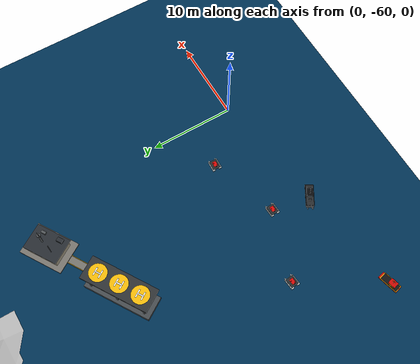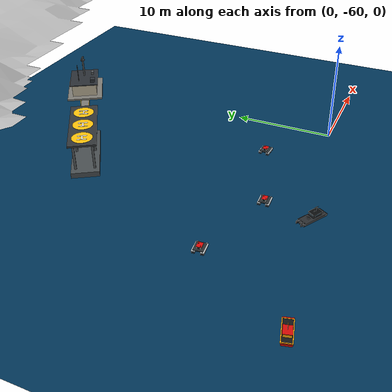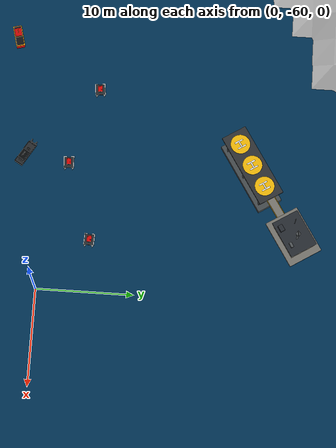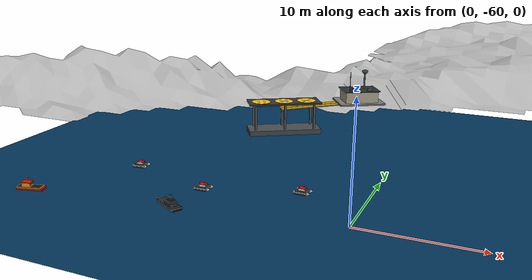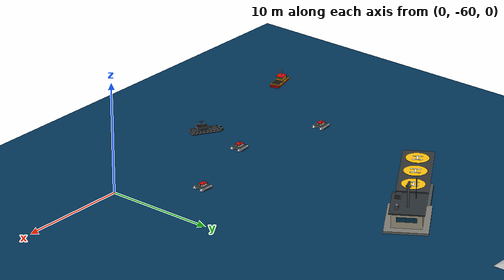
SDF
<sdf version="1.10">
 <world name="heterogeneous_332">
  <plugin filename="gz-sim-physics-system" name="gz::sim::systems::Physics"/>
  <plugin filename="gz-sim-user-commands-system" name="gz::sim::systems::UserCommands"/>
  <plugin filename="gz-sim-scene-broadcaster-system" name="gz::sim::systems::SceneBroadcaster"/>
  <plugin filename="gz-sim-contact-system" name="gz::sim::systems::Contact"/>
  <plugin filename="gz-sim-sensors-system" name="gz::sim::systems::Sensors">
   <render_engine>ogre2</render_engine>
  </plugin>
  <plugin filename="gz-sim-imu-system" name="gz::sim::systems::Imu"/>
  <plugin filename="gz-sim-air-pressure-system" name="gz::sim::systems::AirPressure"/>
  <plugin filename="gz-sim-magnetometer-system" name="gz::sim::systems::Magnetometer"/>
  <plugin filename="gz-sim-navsat-system" name="gz::sim::systems::NavSat"/>
  <physics type="ode">
   <max_step_size>0.004</max_step_size>
   <real_time_factor>1</real_time_factor>
   <real_time_update_rate>250</real_time_update_rate>
  </physics>
  <gravity>0 0 -9.8</gravity>
  <scene>
   <grid>false</grid>
   <ambient>0.75 0.78 0.82 1</ambient>
   <background>0.82 0.9 0.96 1</background>
   <shadows>true</shadows>
  </scene>
  <spherical_coordinates>
   <surface_model>EARTH_WGS84</surface_model>
   <world_frame_orientation>ENU</world_frame_orientation>
   <latitude_deg>47.397971057728974</latitude_deg>
   <longitude_deg>8.5461637398001464</longitude_deg>
   <elevation>0</elevation>
   <heading_deg>0</heading_deg>
  </spherical_coordinates>
  <model name="ocean_plane">
   <static>true</static>
   <link name="ocean_link">
    <visual name="ocean_visual">
     <pose>0 0 -0.02 0 0 0</pose>
     <geometry><plane><normal>0 0 1</normal><size>2800 2600</size></plane></geometry>
     <material>
      <ambient>0 0.08 0.16 0.48</ambient>
      <diffuse>0 0.2 0.34 0.48</diffuse>
      <specular>0.05 0.08 0.1 1</specular>
     </material>
    </visual>
    <collision name="ocean_collision">
     <geometry><plane><normal>0 0 1</normal><size>2800 2600</size></plane></geometry>
    </collision>
   </link>
  </model>
  <include>
   <uri>model://catalina_island</uri>
   <name>catalina_island_terrain</name>
   <pose>0 0 -0.144 0 0 0</pose>
  </include>
  <include><uri>model://shore_collision_boundary</uri><name>shore_collision_boundary</name></include>
  <include>
   <uri>model://sim332_island_uav_base</uri>
   <name>island_uav_base</name>
   <pose>-13.5 -38.7 0 0 0 0.559</pose>
  </include>
  <include>
   <uri>model://mountain_shore_command_base</uri>
   <name>shore_command_base</name>
   <pose>-6.3 -34.2 3.15 0 0 0.559</pose>
  </include>
  <include><uri>model://sim332_usv_blue</uri><name>usv_01</name><pose>-21.6 -54.9 0 0 0 0.10</pose></include>
  <include><uri>model://sim332_usv_green</uri><name>usv_02</name><pose>-13.5 -57.6 0 0 0 0.05</pose></include>
  <include><uri>model://sim332_usv_cyan</uri><name>usv_03</name><pose>-5.4 -54.9 0 0 0 -0.05</pose></include>
  <include>
   <uri>model://sim332_friendly_ship</uri>
   <name>friendly_ship</name>
   <pose>-27 -63.9 0 0 0 0.25</pose>
  </include>
  <include>
   <uri>model://sim332_enemy_ship</uri>
   <name>enemy_ship</name>
   <pose>-14.4 -62.1 0 0 0 2.60</pose>
  </include>
  <light name="sun" type="directional">
   <pose>0 0 100 0 0 0</pose>
   <intensity>1.1</intensity>
   <direction>-0.35 0.2 -0.92</direction>
   <diffuse>0.92 0.92 0.88 1</diffuse>
   <specular>0.25 0.25 0.25 1</specular>
  </light>
 </world>
</sdf>

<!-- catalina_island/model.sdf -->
<sdf version="1.9">
  <!-- Unity presentation geometry scale=0.18 -->
  <model name="catalina_island">
    <static>true</static>
    <link name="terrain_link">
      <!-- Catalina 岛屿卫星地形 -->
      <visual name="terrain_visual">
        <cast_shadows>true</cast_shadows>
        <geometry>
          <mesh>
            <uri>meshes/scene.gltf</uri>
            <!--
              原模型约 41.6km × 35.5km。
              Unity 与 Gazebo 共用 0.024 原始 mesh 缩放。
            -->
            <scale>0.00432 0.00432 0.00432</scale>
          </mesh>
        </geometry>
      </visual>
      <collision name="terrain_collision">
        <geometry>
          <mesh>
            <uri>meshes/terrain_collision.obj</uri>
            <scale>0.00432 0.00432 0.00432</scale>
          </mesh>
        </geometry>
      </collision>
    </link>
  </model>
</sdf>

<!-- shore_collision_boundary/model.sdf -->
<sdf version="1.9">
  <model name="Shore_Collision_Boundary">
    <static>true</static>
    <link name="boundary_link">
      <!-- 四段外海边界只限制驶出地图，不覆盖可航行海面。 -->
      <collision name="North_Shore_Collision">
        <pose>0 448 3 0 0 0</pose>
        <geometry><box><size>1050 8 8</size></box></geometry>
      </collision>
      <collision name="South_Shore_Collision">
        <pose>0 -448 3 0 0 0</pose>
        <geometry><box><size>1050 8 8</size></box></geometry>
      </collision>
      <collision name="East_Shore_Collision">
        <pose>523 0 3 0 0 0</pose>
        <geometry><box><size>8 900 8</size></box></geometry>
      </collision>
      <collision name="West_Shore_Collision">
        <pose>-523 0 3 0 0 0</pose>
        <geometry><box><size>8 900 8</size></box></geometry>
      </collision>
    </link>
  </model>
</sdf>

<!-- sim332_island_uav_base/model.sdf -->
<sdf version="1.10">
  <!-- Unity presentation geometry scale=0.18 -->
  <!-- Numeric visual source: SimulationBootstrap.BuildIslandUavBase. -->
  <model name="sim332_island_uav_base">
    <static>true</static>
    <link name="base_link">
      <collision name="foundation_collision">
        <pose>0 0 0.27 0 0 0</pose>
        <geometry>
          <box>
            <size>7.92 2.7 0.54</size>
          </box>
        </geometry>
      </collision>
      <visual name="foundation">
        <pose>0 0 0.27 0 0 0</pose>
        <geometry>
          <box>
            <size>7.92 2.7 0.54</size>
          </box>
        </geometry>
        <material>
          <ambient>.126 .135 .1395 1</ambient>
          <diffuse>.28 .30 .31 1</diffuse>
        </material>
      </visual>
      <collision name="deck_collision">
        <pose>0 0 3.42 0 0 0</pose>
        <geometry>
          <box>
            <size>7.92 2.7 0.18</size>
          </box>
        </geometry>
      </collision>
      <visual name="flight_deck">
        <pose>0 0 3.42 0 0 0</pose>
        <geometry>
          <box>
            <size>7.92 2.7 0.18</size>
          </box>
        </geometry>
        <material>
          <ambient>.0855 .09 .0945 1</ambient>
          <diffuse>.19 .20 .21 1</diffuse>
        </material>
      </visual>
      <collision name="column_01_collision">
        <pose>-3.24 -0.9 1.908 0 0 0</pose>
        <geometry>
          <box>
            <size>0.216 0.216 3.024</size>
          </box>
        </geometry>
      </collision>
      <collision name="column_02_collision">
        <pose>-3.24 0.9 1.908 0 0 0</pose>
        <geometry>
          <box>
            <size>0.216 0.216 3.024</size>
          </box>
        </geometry>
      </collision>
      <collision name="column_03_collision">
        <pose>0 -0.9 1.908 0 0 0</pose>
        <geometry>
          <box>
            <size>0.216 0.216 3.024</size>
          </box>
        </geometry>
      </collision>
      <collision name="column_04_collision">
        <pose>0 0.9 1.908 0 0 0</pose>
        <geometry>
          <box>
            <size>0.216 0.216 3.024</size>
          </box>
        </geometry>
      </collision>
      <collision name="column_05_collision">
        <pose>3.24 -0.9 1.908 0 0 0</pose>
        <geometry>
          <box>
            <size>0.216 0.216 3.024</size>
          </box>
        </geometry>
      </collision>
      <collision name="column_06_collision">
        <pose>3.24 0.9 1.908 0 0 0</pose>
        <geometry>
          <box>
            <size>0.216 0.216 3.024</size>
          </box>
        </geometry>
      </collision>
      <visual name="column_01">
        <pose>-3.24 -0.9 1.908 0 0 0</pose>
        <geometry>
          <box>
            <size>0.216 0.216 3.024</size>
          </box>
        </geometry>
        <material>
          <ambient>.144 .153 .1575 1</ambient>
          <diffuse>.32 .34 .35 1</diffuse>
        </material>
      </visual>
      <visual name="column_02">
        <pose>-3.24 0.9 1.908 0 0 0</pose>
        <geometry>
          <box>
            <size>0.216 0.216 3.024</size>
          </box>
        </geometry>
        <material>
          <ambient>.144 .153 .1575 1</ambient>
          <diffuse>.32 .34 .35 1</diffuse>
        </material>
      </visual>
      <visual name="column_03">
        <pose>0 -0.9 1.908 0 0 0</pose>
        <geometry>
          <box>
            <size>0.216 0.216 3.024</size>
          </box>
        </geometry>
        <material>
          <ambient>.144 .153 .1575 1</ambient>
          <diffuse>.32 .34 .35 1</diffuse>
        </material>
      </visual>
      <visual name="column_04">
        <pose>0 0.9 1.908 0 0 0</pose>
        <geometry>
          <box>
            <size>0.216 0.216 3.024</size>
          </box>
        </geometry>
        <material>
          <ambient>.144 .153 .1575 1</ambient>
          <diffuse>.32 .34 .35 1</diffuse>
        </material>
      </visual>
      <visual name="column_05">
        <pose>3.24 -0.9 1.908 0 0 0</pose>
        <geometry>
          <box>
            <size>0.216 0.216 3.024</size>
          </box>
        </geometry>
        <material>
          <ambient>.144 .153 .1575 1</ambient>
          <diffuse>.32 .34 .35 1</diffuse>
        </material>
      </visual>
      <visual name="column_06">
        <pose>3.24 0.9 1.908 0 0 0</pose>
        <geometry>
          <box>
            <size>0.216 0.216 3.024</size>
          </box>
        </geometry>
        <material>
          <ambient>.144 .153 .1575 1</ambient>
          <diffuse>.32 .34 .35 1</diffuse>
        </material>
      </visual>
      <collision name="pad_01_collision">
        <pose>-2.52 0 3.5172 0 0 0</pose>
        <geometry>
          <cylinder>
            <radius>0.99</radius>
            <length>0.0144</length>
          </cylinder>
        </geometry>
      </collision>
      <collision name="pad_02_collision">
        <pose>0 0 3.5172 0 0 0</pose>
        <geometry>
          <cylinder>
            <radius>0.99</radius>
            <length>0.0144</length>
          </cylinder>
        </geometry>
      </collision>
      <collision name="pad_03_collision">
        <pose>2.52 0 3.5172 0 0 0</pose>
        <geometry>
          <cylinder>
            <radius>0.99</radius>
            <length>0.0144</length>
          </cylinder>
        </geometry>
      </collision>
      <visual name="pad_01">
        <pose>-2.52 0 3.5172 0 0 0</pose>
        <geometry>
          <cylinder>
            <radius>0.99</radius>
            <length>0.0144</length>
          </cylinder>
        </geometry>
        <material>
          <ambient>.153 .1575 .1575 1</ambient>
          <diffuse>.34 .35 .35 1</diffuse>
        </material>
      </visual>
      <visual name="pad_02">
        <pose>0 0 3.5172 0 0 0</pose>
        <geometry>
          <cylinder>
            <radius>0.99</radius>
            <length>0.0144</length>
          </cylinder>
        </geometry>
        <material>
          <ambient>.153 .1575 .1575 1</ambient>
          <diffuse>.34 .35 .35 1</diffuse>
        </material>
      </visual>
      <visual name="pad_03">
        <pose>2.52 0 3.5172 0 0 0</pose>
        <geometry>
          <cylinder>
            <radius>0.99</radius>
            <length>0.0144</length>
          </cylinder>
        </geometry>
        <material>
          <ambient>.153 .1575 .1575 1</ambient>
          <diffuse>.34 .35 .35 1</diffuse>
        </material>
      </visual>
      <visual name="yellow_edge_01">
        <pose>-2.52 0 3.5262 0 0 0</pose>
        <geometry>
          <cylinder>
            <radius>1.008</radius>
            <length>0.0063</length>
          </cylinder>
        </geometry>
        <material>
          <ambient>.441 .3375 .018 1</ambient>
          <diffuse>.98 .75 .04 1</diffuse>
        </material>
      </visual>
      <visual name="yellow_edge_02">
        <pose>0 0 3.5262 0 0 0</pose>
        <geometry>
          <cylinder>
            <radius>1.008</radius>
            <length>0.0063</length>
          </cylinder>
        </geometry>
        <material>
          <ambient>.441 .3375 .018 1</ambient>
          <diffuse>.98 .75 .04 1</diffuse>
        </material>
      </visual>
      <visual name="yellow_edge_03">
        <pose>2.52 0 3.5262 0 0 0</pose>
        <geometry>
          <cylinder>
            <radius>1.008</radius>
            <length>0.0063</length>
          </cylinder>
        </geometry>
        <material>
          <ambient>.441 .3375 .018 1</ambient>
          <diffuse>.98 .75 .04 1</diffuse>
        </material>
      </visual>
      <visual name="h01_left">
        <pose>-2.844 0 3.528 0 0 0</pose>
        <geometry>
          <box>
            <size>0.144 0.9 0.0144</size>
          </box>
        </geometry>
        <material>
          <ambient>1 1 1 1</ambient>
          <diffuse>1 1 1 1</diffuse>
        </material>
      </visual>
      <visual name="h01_right">
        <pose>-2.196 0 3.528 0 0 0</pose>
        <geometry>
          <box>
            <size>0.144 0.9 0.0144</size>
          </box>
        </geometry>
        <material>
          <ambient>1 1 1 1</ambient>
          <diffuse>1 1 1 1</diffuse>
        </material>
      </visual>
      <visual name="h01_cross">
        <pose>-2.52 0 3.5298 0 0 0</pose>
        <geometry>
          <box>
            <size>0.648 0.144 0.0144</size>
          </box>
        </geometry>
        <material>
          <ambient>1 1 1 1</ambient>
          <diffuse>1 1 1 1</diffuse>
        </material>
      </visual>
      <visual name="h02_left">
        <pose>-0.324 0 3.528 0 0 0</pose>
        <geometry>
          <box>
            <size>0.144 0.9 0.0144</size>
          </box>
        </geometry>
        <material>
          <ambient>1 1 1 1</ambient>
          <diffuse>1 1 1 1</diffuse>
        </material>
      </visual>
      <visual name="h02_right">
        <pose>0.324 0 3.528 0 0 0</pose>
        <geometry>
          <box>
            <size>0.144 0.9 0.0144</size>
          </box>
        </geometry>
        <material>
          <ambient>1 1 1 1</ambient>
          <diffuse>1 1 1 1</diffuse>
        </material>
      </visual>
      <visual name="h02_cross">
        <pose>0 0 3.5298 0 0 0</pose>
        <geometry>
          <box>
            <size>0.648 0.144 0.0144</size>
          </box>
        </geometry>
        <material>
          <ambient>1 1 1 1</ambient>
          <diffuse>1 1 1 1</diffuse>
        </material>
      </visual>
      <visual name="h03_left">
        <pose>2.196 0 3.528 0 0 0</pose>
        <geometry>
          <box>
            <size>0.144 0.9 0.0144</size>
          </box>
        </geometry>
        <material>
          <ambient>1 1 1 1</ambient>
          <diffuse>1 1 1 1</diffuse>
        </material>
      </visual>
      <visual name="h03_right">
        <pose>2.844 0 3.528 0 0 0</pose>
        <geometry>
          <box>
            <size>0.144 0.9 0.0144</size>
          </box>
        </geometry>
        <material>
          <ambient>1 1 1 1</ambient>
          <diffuse>1 1 1 1</diffuse>
        </material>
      </visual>
      <visual name="h03_cross">
        <pose>2.52 0 3.5298 0 0 0</pose>
        <geometry>
          <box>
            <size>0.648 0.144 0.0144</size>
          </box>
        </geometry>
        <material>
          <ambient>1 1 1 1</ambient>
          <diffuse>1 1 1 1</diffuse>
        </material>
      </visual>
    </link>
  </model>
</sdf>

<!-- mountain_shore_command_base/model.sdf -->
<sdf version="1.10">
  <!-- Unity presentation geometry scale=0.18 -->
  <!-- Numeric visual source: SimulationBootstrap.BuildShoreCommandBase. -->
  <model name="mountain_shore_command_base">
    <static>true</static>
    <link name="base_link">
      <collision name="foundation_collision">
        <pose>0 0 0.09 0 0 0</pose>
        <geometry>
          <box>
            <size>5.04 3.6 0.18</size>
          </box>
        </geometry>
      </collision>
      <visual name="foundation">
        <pose>0 0 0.09 0 0 0</pose>
        <geometry>
          <box>
            <size>5.04 3.6 0.18</size>
          </box>
        </geometry>
        <material>
          <ambient>.216 .2115 .198 1</ambient>
          <diffuse>.48 .47 .44 1</diffuse>
        </material>
      </visual>
      <collision name="building_collision">
        <pose>0 0 0.756 0 0 0</pose>
        <geometry>
          <box>
            <size>3.6 2.52 1.296</size>
          </box>
        </geometry>
      </collision>
      <visual name="building">
        <pose>0 0 0.756 0 0 0</pose>
        <geometry>
          <box>
            <size>3.6 2.52 1.296</size>
          </box>
        </geometry>
        <material>
          <ambient>.333 .315 .27 1</ambient>
          <diffuse>.74 .70 .60 1</diffuse>
        </material>
      </visual>
      <collision name="roof_collision">
        <pose>0 0 1.44 0 0 0</pose>
        <geometry>
          <box>
            <size>3.96 2.88 0.09</size>
          </box>
        </geometry>
      </collision>
      <visual name="roof">
        <pose>0 0 1.44 0 0 0</pose>
        <geometry>
          <box>
            <size>3.96 2.88 0.09</size>
          </box>
        </geometry>
        <material>
          <ambient>.072 .081 .09 1</ambient>
          <diffuse>.16 .18 .20 1</diffuse>
        </material>
      </visual>
      <visual name="front_windows">
        <pose>1.8072 0 0.918 0 0 0</pose>
        <geometry>
          <box>
            <size>0.0144 1.62 0.396</size>
          </box>
        </geometry>
        <material>
          <ambient>.01575 .1035 .153 1</ambient>
          <diffuse>.035 .23 .34 1</diffuse>
        </material>
      </visual>
      <collision name="bridge_collision">
        <pose>-4.32 0 -0.27 0 -.06 0</pose>
        <geometry>
          <box>
            <size>9 0.9 0.09</size>
          </box>
        </geometry>
      </collision>
      <visual name="bridge_to_pad">
        <pose>-4.32 0 -0.27 0 -.06 0</pose>
        <geometry>
          <box>
            <size>9 0.9 0.09</size>
          </box>
        </geometry>
        <material>
          <ambient>.216 .2115 .198 1</ambient>
          <diffuse>.48 .47 .44 1</diffuse>
        </material>
      </visual>
      <visual name="bridge_rail_left">
        <pose>-4.32 0.423 -0.117 0 -.06 0</pose>
        <geometry>
          <box>
            <size>9 0.0216 0.216</size>
          </box>
        </geometry>
        <material>
          <ambient>.441 .3375 .018 1</ambient>
          <diffuse>.98 .75 .04 1</diffuse>
        </material>
      </visual>
      <visual name="bridge_rail_right">
        <pose>-4.32 -0.423 -0.117 0 -.06 0</pose>
        <geometry>
          <box>
            <size>9 0.0216 0.216</size>
          </box>
        </geometry>
        <material>
          <ambient>.441 .3375 .018 1</ambient>
          <diffuse>.98 .75 .04 1</diffuse>
        </material>
      </visual>
      <collision name="radar_tower_collision">
        <pose>0.54 0 2.34 0 0 0</pose>
        <geometry>
          <cylinder>
            <radius>0.09</radius>
            <length>1.8</length>
          </cylinder>
        </geometry>
      </collision>
      <visual name="radar_tower">
        <pose>0.54 0 2.34 0 0 0</pose>
        <geometry>
          <cylinder>
            <radius>0.09</radius>
            <length>1.8</length>
          </cylinder>
        </geometry>
        <material>
          <ambient>.144 .153 .1575 1</ambient>
          <diffuse>.32 .34 .35 1</diffuse>
        </material>
      </visual>
      <visual name="radar_pedestal">
        <pose>0.54 0 3.276 0 0 0</pose>
        <geometry>
          <cylinder>
            <radius>0.216</radius>
            <length>0.09</length>
          </cylinder>
        </geometry>
        <material>
          <ambient>.144 .153 .1575 1</ambient>
          <diffuse>.32 .34 .35 1</diffuse>
        </material>
      </visual>
      <visual name="radar_dish">
        <pose>0.54 0 3.456 0 0 -.3839724354</pose>
        <geometry>
          <ellipsoid>
            <radii>0.342 0.0405 0.207</radii>
          </ellipsoid>
        </geometry>
        <material>
          <ambient>.144 .153 .1575 1</ambient>
          <diffuse>.32 .34 .35 1</diffuse>
        </material>
      </visual>
      <visual name="antenna_mast">
        <pose>-0.9 0.54 2.43 0 0 0</pose>
        <geometry>
          <cylinder>
            <radius>0.0324</radius>
            <length>1.8</length>
          </cylinder>
        </geometry>
        <material>
          <ambient>.144 .153 .1575 1</ambient>
          <diffuse>.32 .34 .35 1</diffuse>
        </material>
      </visual>
      <visual name="generator">
        <pose>-1.08 -0.9 1.638 0 0 0</pose>
        <geometry>
          <box>
            <size>0.684 0.468 0.324</size>
          </box>
        </geometry>
        <material>
          <ambient>.072 .081 .09 1</ambient>
          <diffuse>.16 .18 .20 1</diffuse>
        </material>
      </visual>
      <visual name="equipment_console">
        <pose>0.9 -0.864 1.62 0 0 0</pose>
        <geometry>
          <box>
            <size>0.54 0.27 0.288</size>
          </box>
        </geometry>
        <material>
          <ambient>.144 .153 .1575 1</ambient>
          <diffuse>.32 .34 .35 1</diffuse>
        </material>
      </visual>
    </link>
  </model>
</sdf>

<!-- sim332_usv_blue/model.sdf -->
<sdf version="1.10">
  <model name="sim332_usv_blue">
    <include merge="true"><uri>model://unity_usv_m1500</uri></include>
    <plugin filename="libBoatWaveFollower.so" name="gz::sim::systems::BoatWaveFollower">
      <mean_z>0.0</mean_z><heave_amplitude>0.02</heave_amplitude>
      <roll_amplitude>0.025</roll_amplitude><pitch_amplitude>0.018</pitch_amplitude>
      <primary_frequency>1.1</primary_frequency><secondary_frequency>1.7</secondary_frequency>
      <wave_number_x>0.35</wave_number_x><wave_number_y>0.22</wave_number_y>
      <velocity_topic>/model/own_01/cmd_vel</velocity_topic>
    </plugin>
  </model>
</sdf>

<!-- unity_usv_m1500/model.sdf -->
<sdf version="1.10">
  <!-- Product vehicle visuals restored to physical 1:1 scale -->
  <model name="unity_usv_m1500">
    <static>false</static>
    <link name="hull">
      <gravity>false</gravity>
      <enable_wind>true</enable_wind>
      <inertial>
        <mass>35.0</mass>
        <inertia>
          <ixx>4.58</ixx>
          <iyy>7.61</iyy>
          <izz>10.09</izz>
          <ixy>0</ixy>
          <ixz>0</ixz>
          <iyz>0</iyz>
        </inertia>
      </inertial>
      <collision name="vehicle_envelope">
        <pose>0 0 0.27 0 0 0</pose>
        <geometry>
          <box>
            <size>1.50 1.10 0.54</size>
          </box>
        </geometry>
      </collision>
      <visual name="port_pontoon_lower">
        <pose>-0.1699999999 0.3900000001 0.01999999998 0 0 0</pose>
        <geometry>
          <box>
            <size>1.16 0.3000000001 0.2</size>
          </box>
        </geometry>
        <material>
          <ambient>0.025 0.035 0.045 1</ambient>
          <diffuse>0.055 0.075 0.09 1</diffuse>
        </material>
      </visual>
      <visual name="starboard_pontoon_lower">
        <pose>-0.1699999999 -0.3900000001 0.01999999998 0 0 0</pose>
        <geometry>
          <box>
            <size>1.16 0.3000000001 0.2</size>
          </box>
        </geometry>
        <material>
          <ambient>0.025 0.035 0.045 1</ambient>
          <diffuse>0.055 0.075 0.09 1</diffuse>
        </material>
      </visual>
      <visual name="port_pontoon_bow">
        <pose>0.58 0.3900000001 0.07000000002 0 1.5707963268 0</pose>
        <geometry>
          <cone>
            <radius>0.1499999999</radius>
            <length>0.34</length>
          </cone>
        </geometry>
        <material>
          <ambient>0.42 0.44 0.45 1</ambient>
          <diffuse>0.84 0.87 0.88 1</diffuse>
        </material>
      </visual>
      <visual name="starboard_pontoon_bow">
        <pose>0.58 -0.3900000001 0.07000000002 0 1.5707963268 0</pose>
        <geometry>
          <cone>
            <radius>0.1499999999</radius>
            <length>0.34</length>
          </cone>
        </geometry>
        <material>
          <ambient>0.42 0.44 0.45 1</ambient>
          <diffuse>0.84 0.87 0.88 1</diffuse>
        </material>
      </visual>
      <visual name="port_pontoon_cap">
        <pose>-0.1200000001 0.3900000001 0.11 0 0 0</pose>
        <geometry>
          <box>
            <size>1.25 0.32 0.07999999992</size>
          </box>
        </geometry>
        <material>
          <ambient>0.42 0.44 0.45 1</ambient>
          <diffuse>0.84 0.87 0.88 1</diffuse>
        </material>
      </visual>
      <visual name="starboard_pontoon_cap">
        <pose>-0.1200000001 -0.3900000001 0.11 0 0 0</pose>
        <geometry>
          <box>
            <size>1.25 0.32 0.07999999992</size>
          </box>
        </geometry>
        <material>
          <ambient>0.42 0.44 0.45 1</ambient>
          <diffuse>0.84 0.87 0.88 1</diffuse>
        </material>
      </visual>
      <visual name="cross_deck">
        <pose>-0.07999999992 0 0.1650000001 0 0 0</pose>
        <geometry>
          <box>
            <size>1.12 0.92 0.07000000002</size>
          </box>
        </geometry>
        <material>
          <ambient>0.08 0.09 0.095 1</ambient>
          <diffuse>0.16 0.18 0.19 1</diffuse>
        </material>
      </visual>
      <visual name="equipment_bay">
        <pose>-0.1200000001 0 0.29 0 0 0</pose>
        <geometry>
          <box>
            <size>0.58 0.43 0.2</size>
          </box>
        </geometry>
        <material>
          <ambient>0.45 0.455 0.44 1</ambient>
          <diffuse>0.90 0.91 0.88 1</diffuse>
        </material>
      </visual>
      <visual name="equipment_lid">
        <pose>-0.1200000001 0 0.405 0 0 0</pose>
        <geometry>
          <box>
            <size>0.6199999999 0.47 0.03499999992</size>
          </box>
        </geometry>
        <material>
          <ambient>0.43 0.018 0.012 1</ambient>
          <diffuse>0.86 0.035 0.025 1</diffuse>
        </material>
      </visual>
      <visual name="d435_camera">
        <pose>0.1900000001 0 0.32 0 0 0</pose>
        <geometry>
          <box>
            <size>0.045 0.1499999999 0.05000000004</size>
          </box>
        </geometry>
        <material>
          <ambient>0.012 0.12 0.18 1</ambient>
          <diffuse>0.025 0.25 0.38 1</diffuse>
        </material>
      </visual>
      <visual name="jetson_enclosure">
        <pose>-0.38 0 0.31 0 0 0</pose>
        <geometry>
          <box>
            <size>0.16 0.22 0.1000000001</size>
          </box>
        </geometry>
        <material>
          <ambient>0.08 0.09 0.095 1</ambient>
          <diffuse>0.16 0.18 0.19 1</diffuse>
        </material>
      </visual>
      <visual name="rtk_antenna">
        <pose>-0.34 -0.13 0.4600000001 0 0 0</pose>
        <geometry>
          <cylinder>
            <radius>0.02750000004</radius>
            <length>0.07999999992</length>
          </cylinder>
        </geometry>
        <material>
          <ambient>0.08 0.09 0.095 1</ambient>
          <diffuse>0.16 0.18 0.19 1</diffuse>
        </material>
      </visual>
      <visual name="mid360">
        <pose>-0.03000000006 0.13 0.4800000001 0 0 0</pose>
        <geometry>
          <cylinder>
            <radius>0.03749999994</radius>
            <length>0.07999999992</length>
          </cylinder>
        </geometry>
        <material>
          <ambient>0.43 0.018 0.012 1</ambient>
          <diffuse>0.86 0.035 0.025 1</diffuse>
        </material>
      </visual>
      <sensor name="front_camera" type="camera">
        <pose>0.48 0 0.52 0 0 0</pose>
        <update_rate>20</update_rate>
        <camera>
          <horizontal_fov>1.047</horizontal_fov>
          <image>
            <width>320</width>
            <height>180</height>
            <format>R8G8B8</format>
          </image>
          <clip>
            <near>0.05</near>
            <far>200</far>
          </clip>
        </camera>
        <always_on>true</always_on>
        <visualize>false</visualize>
      </sensor>
      <sensor name="front_lidar" type="gpu_lidar">
        <pose>-0.03 0.13 0.48 0 0 0</pose>
        <update_rate>10</update_rate>
        <ray>
          <scan>
            <horizontal>
              <samples>361</samples>
              <resolution>1</resolution>
              <min_angle>-1.5708</min_angle>
              <max_angle>1.5708</max_angle>
            </horizontal>
          </scan>
          <range>
            <min>0.10</min>
            <max>80</max>
            <resolution>0.02</resolution>
          </range>
          <noise>
            <type>gaussian</type>
            <mean>0</mean>
            <stddev>0.01</stddev>
          </noise>
          <visibility_mask>0x01</visibility_mask>
        </ray>
        <always_on>true</always_on>
        <visualize>false</visualize>
      </sensor>
    </link>
  </model>
</sdf>

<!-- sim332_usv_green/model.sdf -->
<sdf version="1.10">
  <model name="sim332_usv_green">
    <include merge="true"><uri>model://unity_usv_m1500</uri></include>
    <plugin filename="libBoatWaveFollower.so" name="gz::sim::systems::BoatWaveFollower">
      <mean_z>0.0</mean_z><heave_amplitude>0.02</heave_amplitude>
      <roll_amplitude>0.025</roll_amplitude><pitch_amplitude>0.018</pitch_amplitude>
      <primary_frequency>1.1</primary_frequency><secondary_frequency>1.7</secondary_frequency>
      <wave_number_x>0.35</wave_number_x><wave_number_y>0.22</wave_number_y>
      <velocity_topic>/model/own_02/cmd_vel</velocity_topic>
    </plugin>
  </model>
</sdf>

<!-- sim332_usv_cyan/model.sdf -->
<sdf version="1.10">
  <model name="sim332_usv_cyan">
    <include merge="true"><uri>model://unity_usv_m1500</uri></include>
    <plugin filename="libBoatWaveFollower.so" name="gz::sim::systems::BoatWaveFollower">
      <mean_z>0.0</mean_z><heave_amplitude>0.02</heave_amplitude>
      <roll_amplitude>0.025</roll_amplitude><pitch_amplitude>0.018</pitch_amplitude>
      <primary_frequency>1.1</primary_frequency><secondary_frequency>1.7</secondary_frequency>
      <wave_number_x>0.35</wave_number_x><wave_number_y>0.22</wave_number_y>
      <velocity_topic>/model/own_03/cmd_vel</velocity_topic>
    </plugin>
  </model>
</sdf>

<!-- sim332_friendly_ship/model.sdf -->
<sdf version="1.10">
  <!-- Unity presentation geometry scale=0.18 -->
  <model name="sim332_friendly_ship">
    <pose>0 0 0.09 0 0 0</pose>
    <link name="hull">
      <gravity>false</gravity>
      <inertial>
        <mass>850</mass>
        <inertia>
          <ixx>1350</ixx>
          <iyy>6900</iyy>
          <izz>7800</izz>
        </inertia>
      </inertial>
      <!-- Geometry mirrors SimulationBootstrap.BuildFriendlyShip exactly. -->
      <collision name="lower_hull_collision">
        <pose>-0.054 0 0.045 0 0 0</pose>
        <geometry>
          <box>
            <size>2.43 0.846 0.18</size>
          </box>
        </geometry>
      </collision>
      <collision name="upper_hull_collision">
        <pose>-0.108 0 0.153 0 0 0</pose>
        <geometry>
          <box>
            <size>2.232 0.918 0.099</size>
          </box>
        </geometry>
      </collision>
      <collision name="cabin_collision">
        <pose>-0.378 0 0.405 0 0 0</pose>
        <geometry>
          <box>
            <size>0.756 0.639 0.342</size>
          </box>
        </geometry>
      </collision>
      <visual name="lower_hull">
        <pose>-0.054 0 0.045 0 0 0</pose>
        <geometry>
          <box>
            <size>2.43 0.846 0.18</size>
          </box>
        </geometry>
        <material>
          <ambient>0.369 0.01575 0.009 1</ambient>
          <diffuse>0.82 0.035 0.02 1</diffuse>
          <specular>0.164 0.164 0.164 1</specular>
        </material>
      </visual>
      <visual name="upper_hull">
        <pose>-0.108 0 0.153 0 0 0</pose>
        <geometry>
          <box>
            <size>2.232 0.918 0.099</size>
          </box>
        </geometry>
        <material>
          <ambient>0.441 0.2925 0.01125 1</ambient>
          <diffuse>0.98 0.65 0.025 1</diffuse>
          <specular>0.12 0.12 0.12 1</specular>
        </material>
      </visual>
      <visual name="main_deck">
        <pose>-0.126 0 0.2124 0 0 0</pose>
        <geometry>
          <box>
            <size>2.07 0.774 0.0324</size>
          </box>
        </geometry>
        <material>
          <ambient>0.03375 0.036 0.03825 1</ambient>
          <diffuse>0.075 0.08 0.085 1</diffuse>
          <specular>0.23 0.23 0.23 1</specular>
        </material>
      </visual>
      <visual name="cabin">
        <pose>-0.378 0 0.405 0 0 0</pose>
        <geometry>
          <box>
            <size>0.756 0.639 0.342</size>
          </box>
        </geometry>
        <material>
          <ambient>0.441 0.2925 0.01125 1</ambient>
          <diffuse>0.98 0.65 0.025 1</diffuse>
          <specular>0.12 0.12 0.12 1</specular>
        </material>
      </visual>
      <visual name="bridge_windows">
        <pose>0.0054 0 0.459 0 0 0</pose>
        <geometry>
          <box>
            <size>0.0144 0.522 0.117</size>
          </box>
        </geometry>
        <material>
          <ambient>0.01125 0.072 0.099 1</ambient>
          <diffuse>0.025 0.16 0.22 1</diffuse>
          <specular>0.604 0.604 0.604 1</specular>
        </material>
      </visual>
      <visual name="roof">
        <pose>-0.396 0 0.594 0 0 0</pose>
        <geometry>
          <box>
            <size>0.864 0.72 0.0396</size>
          </box>
        </geometry>
        <material>
          <ambient>0.369 0.01575 0.009 1</ambient>
          <diffuse>0.82 0.035 0.02 1</diffuse>
          <specular>0.164 0.164 0.164 1</specular>
        </material>
      </visual>
      <visual name="mast">
        <pose>-0.378 0 0.837 0 0 0</pose>
        <geometry>
          <cylinder>
            <radius>0.0216</radius>
            <length>0.468</length>
          </cylinder>
        </geometry>
        <material>
          <ambient>0.03375 0.036 0.03825 1</ambient>
          <diffuse>0.075 0.08 0.085 1</diffuse>
          <specular>0.23 0.23 0.23 1</specular>
        </material>
      </visual>
      <visual name="radar">
        <pose>-0.378 0 1.035 0 0 0</pose>
        <geometry>
          <box>
            <size>0.396 0.0324 0.0216</size>
          </box>
        </geometry>
        <material>
          <ambient>0.441 0.2925 0.01125 1</ambient>
          <diffuse>0.98 0.65 0.025 1</diffuse>
          <specular>0.12 0.12 0.12 1</specular>
        </material>
      </visual>
      <visual name="port_stripe">
        <pose>-0.036 0.4356 0.1656 0 0 0</pose>
        <geometry>
          <box>
            <size>1.764 0.0144 0.063</size>
          </box>
        </geometry>
        <material>
          <ambient>0.441 0.2925 0.01125 1</ambient>
          <diffuse>0.98 0.65 0.025 1</diffuse>
        </material>
      </visual>
      <visual name="starboard_stripe">
        <pose>-0.036 -0.4356 0.1656 0 0 0</pose>
        <geometry>
          <box>
            <size>1.764 0.0144 0.063</size>
          </box>
        </geometry>
        <material>
          <ambient>0.441 0.2925 0.01125 1</ambient>
          <diffuse>0.98 0.65 0.025 1</diffuse>
        </material>
      </visual>
    </link>
    <plugin filename="libBoatWaveFollower.so" name="gz::sim::systems::BoatWaveFollower">
      <mean_z>0.1404</mean_z>
      <heave_amplitude>0.009</heave_amplitude>
      <roll_amplitude>0.018</roll_amplitude>
      <pitch_amplitude>0.015</pitch_amplitude>
      <primary_frequency>0.9</primary_frequency>
      <secondary_frequency>1.35</secondary_frequency>
      <wave_number_x>0.24</wave_number_x>
      <wave_number_y>0.17</wave_number_y>
      <velocity_topic>cmd_vel</velocity_topic>
    </plugin>
  </model>
</sdf>

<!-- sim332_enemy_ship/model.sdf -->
<sdf version="1.10">
  <!-- Unity presentation geometry scale=0.18 -->
  <model name="sim332_enemy_ship">
    <pose>0 0 0.09 0 0 0</pose>
    <link name="hull">
      <gravity>false</gravity>
      <inertial>
        <mass>1100</mass>
        <inertia>
          <ixx>2900</ixx>
          <iyy>21000</iyy>
          <izz>23500</izz>
        </inertia>
      </inertial>
      <!-- Geometry mirrors SimulationBootstrap.BuildEnemyShip exactly. -->
      <collision name="lower_hull_collision">
        <pose>-0.081 0 0.0684 0 0 0</pose>
        <geometry>
          <box>
            <size>2.736 0.882 0.171</size>
          </box>
        </geometry>
      </collision>
      <collision name="upper_hull_collision">
        <pose>-0.135 0 0.1656 0 0 0</pose>
        <geometry>
          <box>
            <size>2.61 0.972 0.1116</size>
          </box>
        </geometry>
      </collision>
      <collision name="port_bow_collision">
        <pose>1.305 0.225 0.1368 0 0 0.4</pose>
        <geometry>
          <box>
            <size>0.45 0.099 0.2016</size>
          </box>
        </geometry>
      </collision>
      <collision name="starboard_bow_collision">
        <pose>1.305 -0.225 0.1368 0 0 -0.4</pose>
        <geometry>
          <box>
            <size>0.45 0.099 0.2016</size>
          </box>
        </geometry>
      </collision>
      <collision name="bridge_collision">
        <pose>-0.405 0 0.4212 0 0 0</pose>
        <geometry>
          <box>
            <size>0.945 0.675 0.333</size>
          </box>
        </geometry>
      </collision>
      <visual name="lower_hull">
        <pose>-0.081 0 0.0684 0 0 0</pose>
        <geometry>
          <box>
            <size>2.736 0.882 0.171</size>
          </box>
        </geometry>
        <material>
          <ambient>0.01575 0.0189 0.0225 1</ambient>
          <diffuse>0.035 0.042 0.05 1</diffuse>
          <specular>0.274 0.274 0.274 1</specular>
        </material>
      </visual>
      <visual name="upper_hull">
        <pose>-0.135 0 0.1656 0 0 0</pose>
        <geometry>
          <box>
            <size>2.61 0.972 0.1116</size>
          </box>
        </geometry>
        <material>
          <ambient>0.04725 0.05175 0.05625 1</ambient>
          <diffuse>0.105 0.115 0.125 1</diffuse>
          <specular>0.23 0.23 0.23 1</specular>
        </material>
      </visual>
      <visual name="main_deck">
        <pose>-0.162 0 0.2304 0 0 0</pose>
        <geometry>
          <box>
            <size>2.448 0.846 0.036</size>
          </box>
        </geometry>
        <material>
          <ambient>0.072 0.0765 0.081 1</ambient>
          <diffuse>0.16 0.17 0.18 1</diffuse>
          <specular>0.186 0.186 0.186 1</specular>
        </material>
      </visual>
      <visual name="port_bow">
        <pose>1.305 0.225 0.1368 0 0 0.4</pose>
        <geometry>
          <box>
            <size>0.45 0.099 0.2016</size>
          </box>
        </geometry>
        <material>
          <ambient>0.01575 0.0189 0.0225 1</ambient>
          <diffuse>0.035 0.042 0.05 1</diffuse>
        </material>
      </visual>
      <visual name="starboard_bow">
        <pose>1.305 -0.225 0.1368 0 0 -0.4</pose>
        <geometry>
          <box>
            <size>0.45 0.099 0.2016</size>
          </box>
        </geometry>
        <material>
          <ambient>0.01575 0.0189 0.0225 1</ambient>
          <diffuse>0.035 0.042 0.05 1</diffuse>
        </material>
      </visual>
      <visual name="bridge">
        <pose>-0.405 0 0.4212 0 0 0</pose>
        <geometry>
          <box>
            <size>0.945 0.675 0.333</size>
          </box>
        </geometry>
        <material>
          <ambient>0.099 0.1035 0.10575 1</ambient>
          <diffuse>0.22 0.23 0.235 1</diffuse>
          <specular>0.252 0.252 0.252 1</specular>
        </material>
      </visual>
      <visual name="front_windows">
        <pose>0.072 0 0.4644 0 0 0</pose>
        <geometry>
          <box>
            <size>0.0144 0.567 0.1188</size>
          </box>
        </geometry>
        <material>
          <ambient>0.01125 0.054 0.0765 1</ambient>
          <diffuse>0.025 0.12 0.17 1</diffuse>
          <specular>0.637 0.637 0.637 1</specular>
        </material>
      </visual>
      <visual name="port_windows">
        <pose>-0.387 0.342 0.4644 0 0 0</pose>
        <geometry>
          <box>
            <size>0.684 0.0126 0.1152</size>
          </box>
        </geometry>
        <material>
          <ambient>0.01125 0.054 0.0765 1</ambient>
          <diffuse>0.025 0.12 0.17 1</diffuse>
          <specular>0.637 0.637 0.637 1</specular>
        </material>
      </visual>
      <visual name="starboard_windows">
        <pose>-0.387 -0.342 0.4644 0 0 0</pose>
        <geometry>
          <box>
            <size>0.684 0.0126 0.1152</size>
          </box>
        </geometry>
        <material>
          <ambient>0.01125 0.054 0.0765 1</ambient>
          <diffuse>0.025 0.12 0.17 1</diffuse>
          <specular>0.637 0.637 0.637 1</specular>
        </material>
      </visual>
      <visual name="bridge_roof">
        <pose>-0.405 0 0.6084 0 0 0</pose>
        <geometry>
          <box>
            <size>1.053 0.756 0.0432</size>
          </box>
        </geometry>
        <material>
          <ambient>0.01575 0.0189 0.0225 1</ambient>
          <diffuse>0.035 0.042 0.05 1</diffuse>
        </material>
      </visual>
      <visual name="aft_equipment">
        <pose>-0.981 0 0.315 0 0 0</pose>
        <geometry>
          <box>
            <size>0.243 0.468 0.1296</size>
          </box>
        </geometry>
        <material>
          <ambient>0.04725 0.05175 0.05625 1</ambient>
          <diffuse>0.105 0.115 0.125 1</diffuse>
        </material>
      </visual>
      <visual name="fore_equipment">
        <pose>0.405 0 0.279 0 0 0</pose>
        <geometry>
          <box>
            <size>0.198 0.306 0.0684</size>
          </box>
        </geometry>
        <material>
          <ambient>0.04725 0.05175 0.05625 1</ambient>
          <diffuse>0.105 0.115 0.125 1</diffuse>
        </material>
      </visual>
      <visual name="mast">
        <pose>-0.459 0 0.8496 0 0 0</pose>
        <geometry>
          <cylinder>
            <radius>0.0234</radius>
            <length>0.459</length>
          </cylinder>
        </geometry>
        <material>
          <ambient>0.153 0.1575 0.1575 1</ambient>
          <diffuse>0.34 0.35 0.35 1</diffuse>
          <specular>0.241 0.241 0.241 1</specular>
        </material>
      </visual>
      <visual name="radar_bar">
        <pose>-0.459 0 1.053 0 0 0</pose>
        <geometry>
          <box>
            <size>0.477 0.036 0.0252</size>
          </box>
        </geometry>
        <material>
          <ambient>0.153 0.1575 0.1575 1</ambient>
          <diffuse>0.34 0.35 0.35 1</diffuse>
        </material>
      </visual>
      <visual name="radar_dome">
        <pose>-0.225 0 0.729 0 0 0</pose>
        <geometry>
          <cylinder>
            <radius>0.0504</radius>
            <length>0.054</length>
          </cylinder>
        </geometry>
        <material>
          <ambient>0.153 0.1575 0.1575 1</ambient>
          <diffuse>0.34 0.35 0.35 1</diffuse>
        </material>
      </visual>
      <visual name="port_rub_rail">
        <pose>-0.054 0.4896 0.1656 0 0 0</pose>
        <geometry>
          <box>
            <size>2.304 0.0144 0.0576</size>
          </box>
        </geometry>
        <material>
          <ambient>0.153 0.1575 0.1575 1</ambient>
          <diffuse>0.34 0.35 0.35 1</diffuse>
        </material>
      </visual>
      <visual name="starboard_rub_rail">
        <pose>-0.054 -0.4896 0.1656 0 0 0</pose>
        <geometry>
          <box>
            <size>2.304 0.0144 0.0576</size>
          </box>
        </geometry>
        <material>
          <ambient>0.153 0.1575 0.1575 1</ambient>
          <diffuse>0.34 0.35 0.35 1</diffuse>
        </material>
      </visual>
    </link>
    <plugin filename="libBoatWaveFollower.so" name="gz::sim::systems::BoatWaveFollower">
      <mean_z>0.1224</mean_z>
      <heave_amplitude>0.0108</heave_amplitude>
      <roll_amplitude>0.025</roll_amplitude>
      <pitch_amplitude>0.02</pitch_amplitude>
      <primary_frequency>0.9</primary_frequency>
      <secondary_frequency>1.35</secondary_frequency>
      <wave_number_x>0.24</wave_number_x>
      <wave_number_y>0.17</wave_number_y>
      <velocity_topic>cmd_vel</velocity_topic>
    </plugin>
    <plugin filename="libRandomVesselMotion.so" name="gz::sim::systems::RandomVesselMotion">
      <command_topic>cmd_vel</command_topic>
      <seed>332</seed>
      <min_speed>0.063</min_speed>
      <max_speed>0.207</max_speed>
      <min_cruise_seconds>5</min_cruise_seconds>
      <max_cruise_seconds>14</max_cruise_seconds>
      <min_stop_seconds>2</min_stop_seconds>
      <max_stop_seconds>6</max_stop_seconds>
      <stop_probability>0.28</stop_probability>
      <max_heading_change>1.75</max_heading_change>
      <turn_rate>0.22</turn_rate>
      <!-- Keep random motion in the open-water basin, not around the
           island-centred world origin. -->
      <operating_center_x>-14.4</operating_center_x>
      <operating_center_y>-80</operating_center_y>
      <operating_radius>22</operating_radius>
      <boundary_margin>4</boundary_margin>
      <enable_topic>/model/enemy_ship/motion_enable</enable_topic>
      <start_enabled>false</start_enabled>
    </plugin>
  </model>
</sdf>
